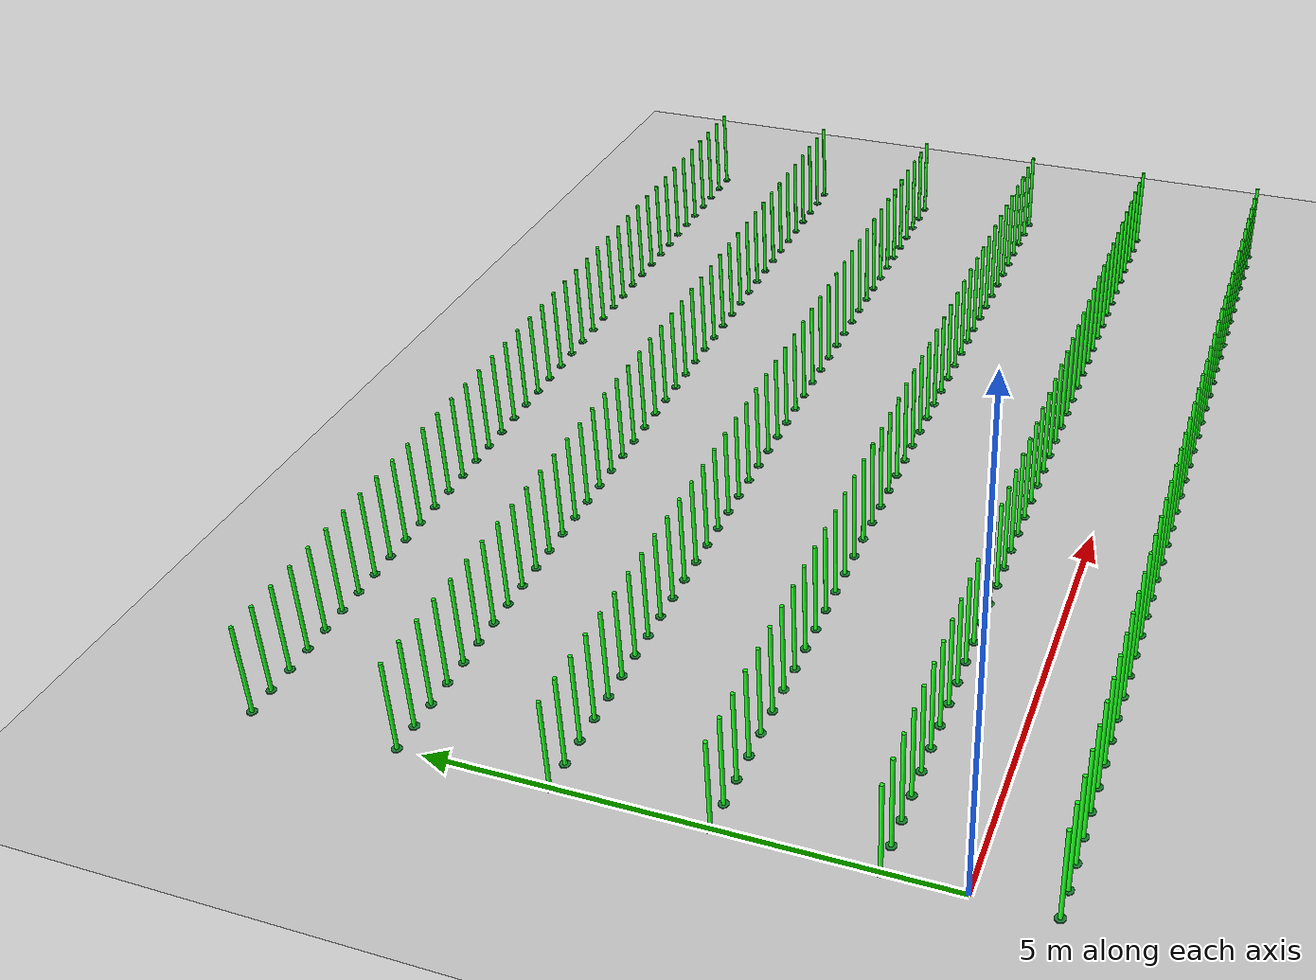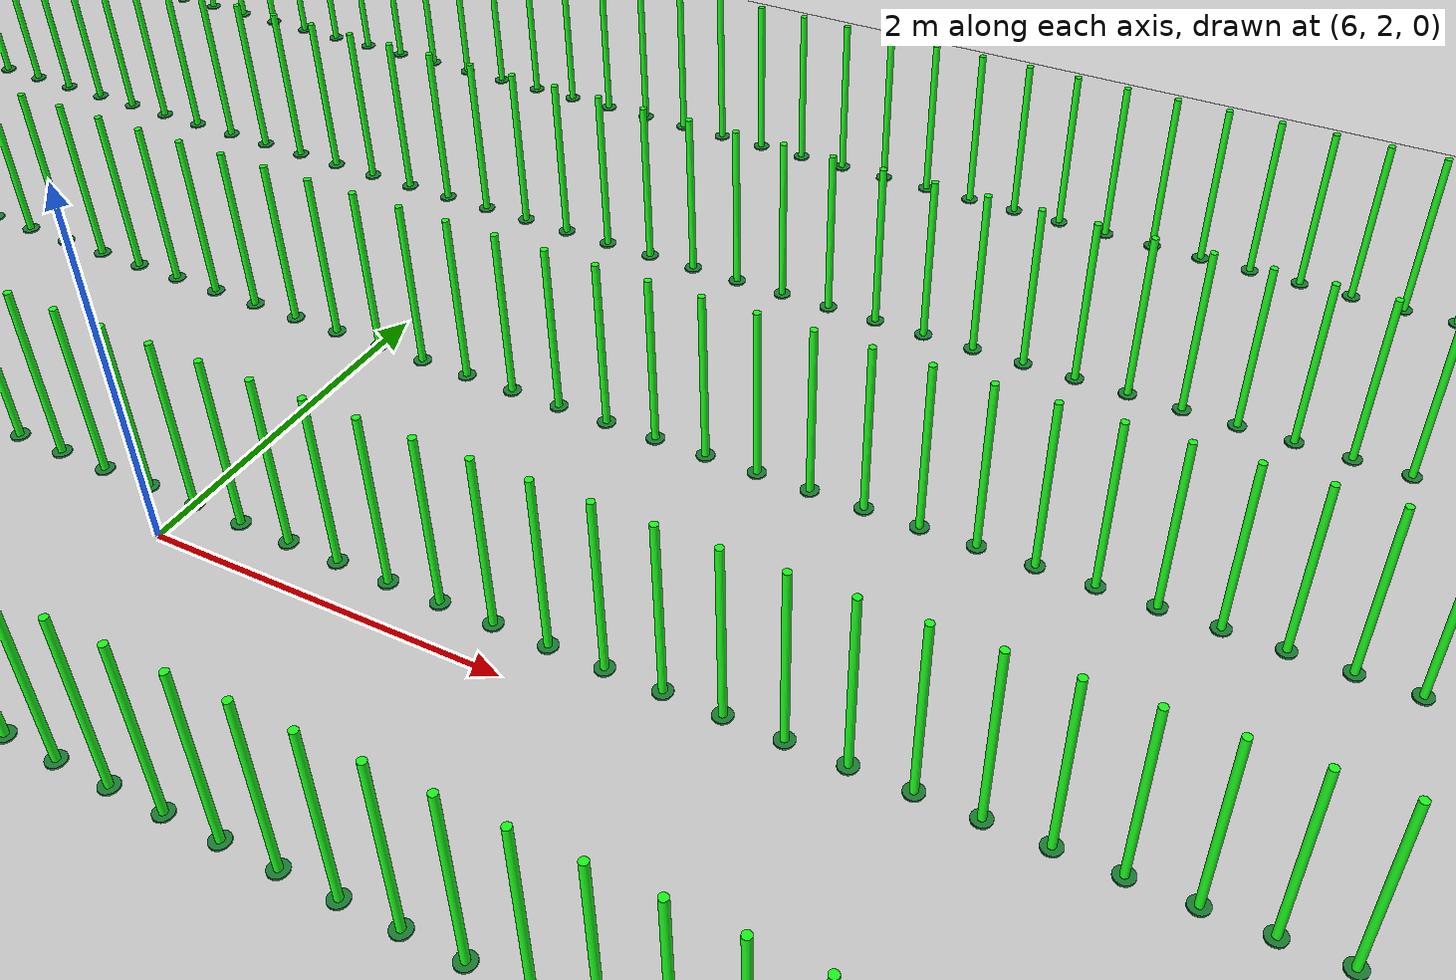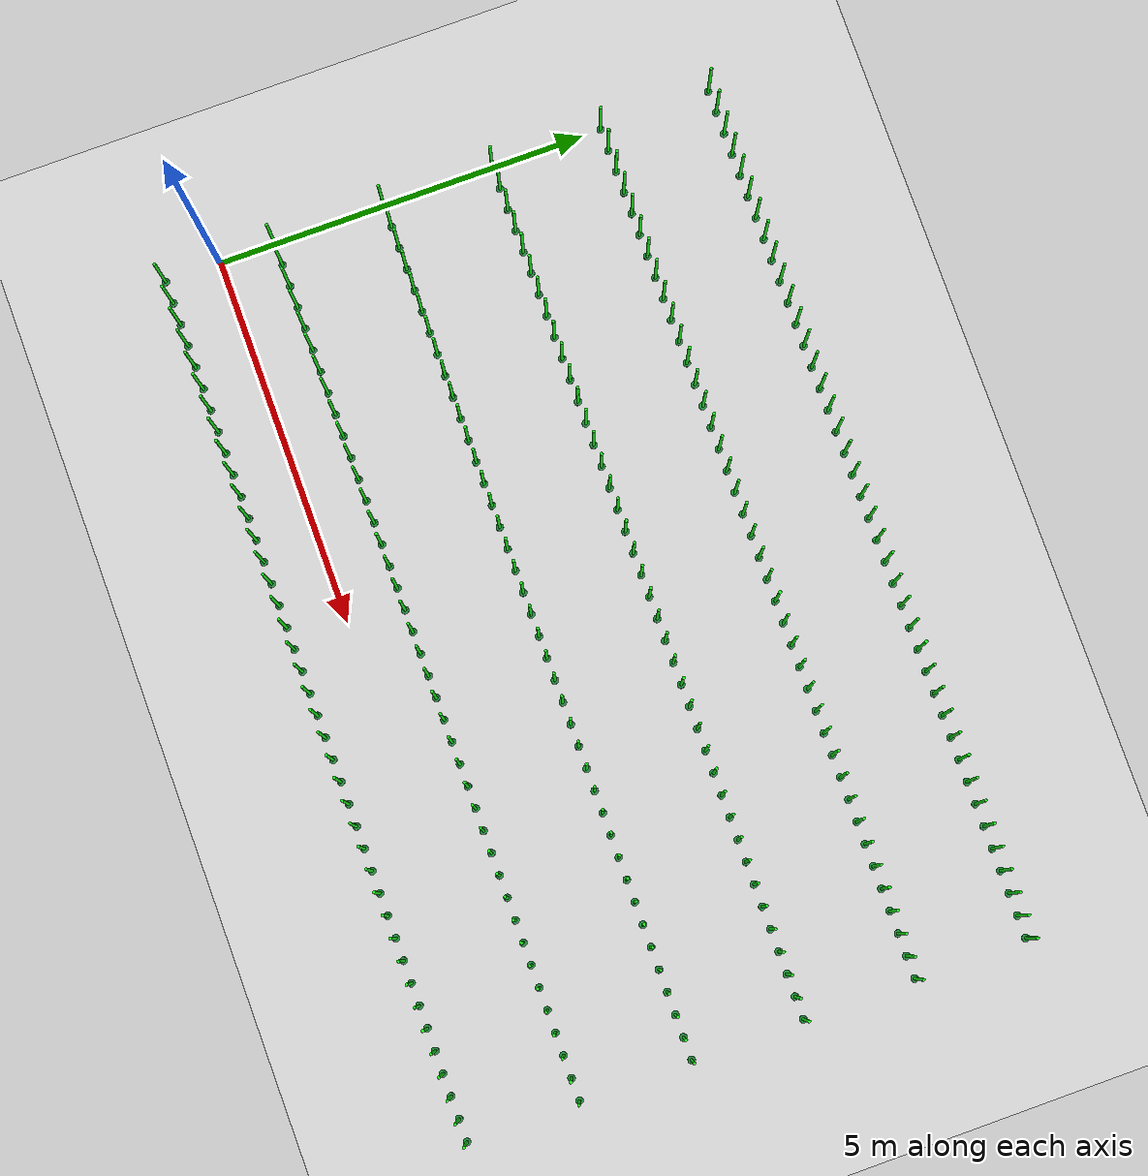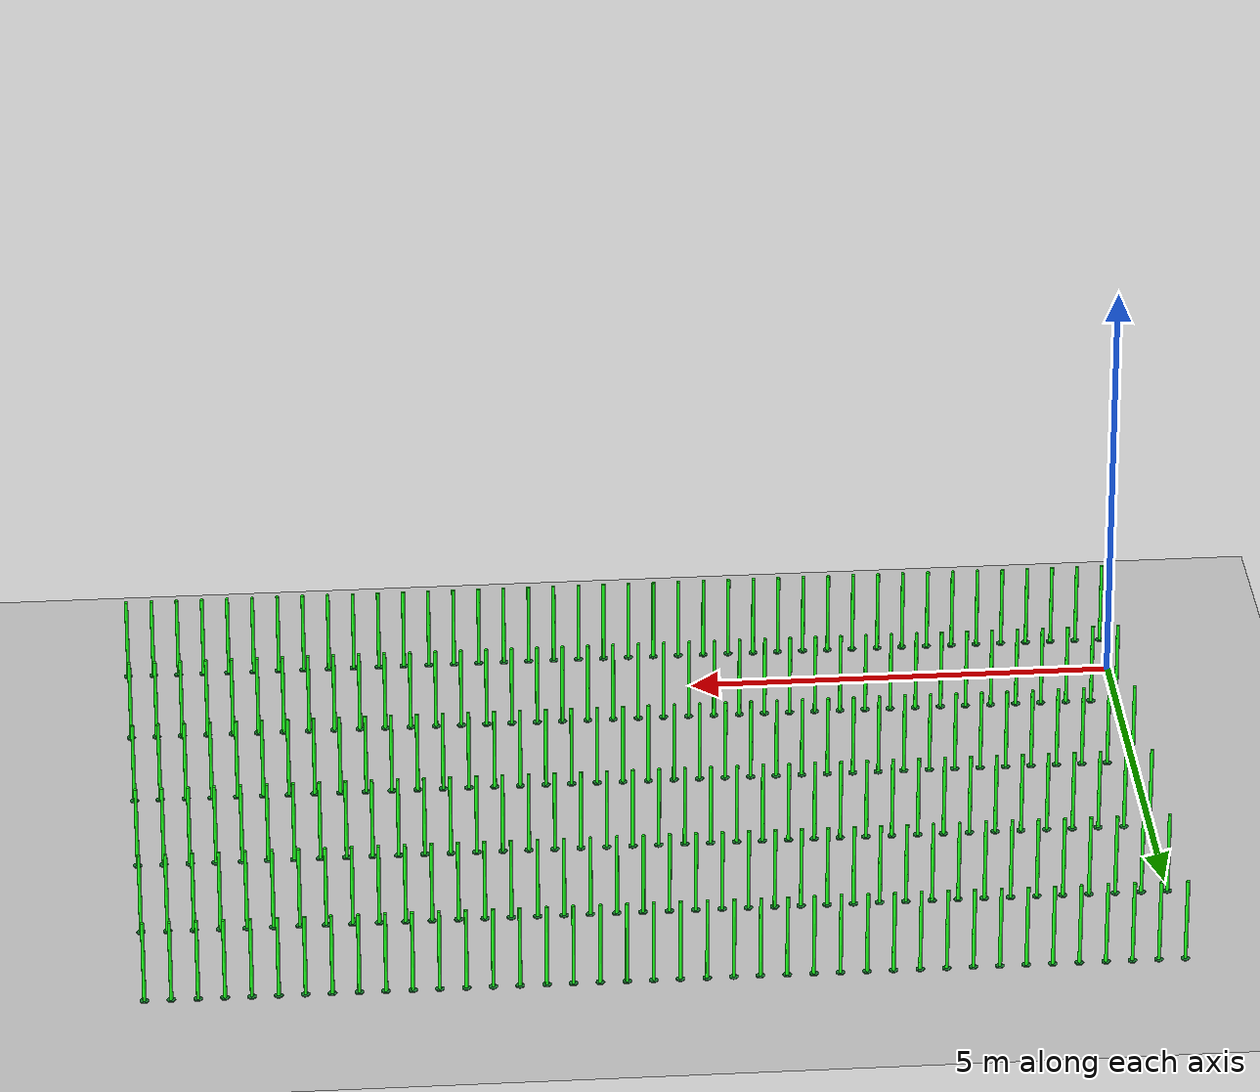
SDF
<?xml version="1.0" ?>
<sdf version="1.4">
  <world name="default">
    <include>
      <uri>model://ground_plane</uri>
    </include>
    <include>
      <uri>model://sun</uri>
    </include>
      <model name="plantgreen_0_0">
        <include>
          <uri>model://plantgreen</uri>
        </include>
        <pose>0.0 -0.75 0 0 0 0</pose>
      </model>
      <model name="plantgreen_0_1">
        <include>
          <uri>model://plantgreen</uri>
        </include>
        <pose>0.3 -0.75 0 0 0 0</pose>
      </model>
      <model name="plantgreen_0_2">
        <include>
          <uri>model://plantgreen</uri>
        </include>
        <pose>0.6 -0.75 0 0 0 0</pose>
      </model>
      <model name="plantgreen_0_3">
        <include>
          <uri>model://plantgreen</uri>
        </include>
        <pose>0.9 -0.75 0 0 0 0</pose>
      </model>
      <model name="plantgreen_0_4">
        <include>
          <uri>model://plantgreen</uri>
        </include>
        <pose>1.2 -0.75 0 0 0 0</pose>
      </model>
      <model name="plantgreen_0_5">
        <include>
          <uri>model://plantgreen</uri>
        </include>
        <pose>1.5 -0.75 0 0 0 0</pose>
      </model>
      <model name="plantgreen_0_6">
        <include>
          <uri>model://plantgreen</uri>
        </include>
        <pose>1.8 -0.75 0 0 0 0</pose>
      </model>
      <model name="plantgreen_0_7">
        <include>
          <uri>model://plantgreen</uri>
        </include>
        <pose>2.1 -0.75 0 0 0 0</pose>
      </model>
      <model name="plantgreen_0_8">
        <include>
          <uri>model://plantgreen</uri>
        </include>
        <pose>2.4 -0.75 0 0 0 0</pose>
      </model>
      <model name="plantgreen_0_9">
        <include>
          <uri>model://plantgreen</uri>
        </include>
        <pose>2.7 -0.75 0 0 0 0</pose>
      </model>
      <model name="plantgreen_0_10">
        <include>
          <uri>model://plantgreen</uri>
        </include>
        <pose>3.0 -0.75 0 0 0 0</pose>
      </model>
      <model name="plantgreen_0_11">
        <include>
          <uri>model://plantgreen</uri>
        </include>
        <pose>3.3 -0.75 0 0 0 0</pose>
      </model>
      <model name="plantgreen_0_12">
        <include>
          <uri>model://plantgreen</uri>
        </include>
        <pose>3.6 -0.75 0 0 0 0</pose>
      </model>
      <model name="plantgreen_0_13">
        <include>
          <uri>model://plantgreen</uri>
        </include>
        <pose>3.9 -0.75 0 0 0 0</pose>
      </model>
      <model name="plantgreen_0_14">
        <include>
          <uri>model://plantgreen</uri>
        </include>
        <pose>4.2 -0.75 0 0 0 0</pose>
      </model>
      <model name="plantgreen_0_15">
        <include>
          <uri>model://plantgreen</uri>
        </include>
        <pose>4.5 -0.75 0 0 0 0</pose>
      </model>
      <model name="plantgreen_0_16">
        <include>
          <uri>model://plantgreen</uri>
        </include>
        <pose>4.8 -0.75 0 0 0 0</pose>
      </model>
      <model name="plantgreen_0_17">
        <include>
          <uri>model://plantgreen</uri>
        </include>
        <pose>5.1 -0.75 0 0 0 0</pose>
      </model>
      <model name="plantgreen_0_18">
        <include>
          <uri>model://plantgreen</uri>
        </include>
        <pose>5.4 -0.75 0 0 0 0</pose>
      </model>
      <model name="plantgreen_0_19">
        <include>
          <uri>model://plantgreen</uri>
        </include>
        <pose>5.7 -0.75 0 0 0 0</pose>
      </model>
      <model name="plantgreen_0_20">
        <include>
          <uri>model://plantgreen</uri>
        </include>
        <pose>6.0 -0.75 0 0 0 0</pose>
      </model>
      <model name="plantgreen_0_21">
        <include>
          <uri>model://plantgreen</uri>
        </include>
        <pose>6.3 -0.75 0 0 0 0</pose>
      </model>
      <model name="plantgreen_0_22">
        <include>
          <uri>model://plantgreen</uri>
        </include>
        <pose>6.6 -0.75 0 0 0 0</pose>
      </model>
      <model name="plantgreen_0_23">
        <include>
          <uri>model://plantgreen</uri>
        </include>
        <pose>6.9 -0.75 0 0 0 0</pose>
      </model>
      <model name="plantgreen_0_24">
        <include>
          <uri>model://plantgreen</uri>
        </include>
        <pose>7.2 -0.75 0 0 0 0</pose>
      </model>
      <model name="plantgreen_0_25">
        <include>
          <uri>model://plantgreen</uri>
        </include>
        <pose>7.5 -0.75 0 0 0 0</pose>
      </model>
      <model name="plantgreen_0_26">
        <include>
          <uri>model://plantgreen</uri>
        </include>
        <pose>7.8 -0.75 0 0 0 0</pose>
      </model>
      <model name="plantgreen_0_27">
        <include>
          <uri>model://plantgreen</uri>
        </include>
        <pose>8.1 -0.75 0 0 0 0</pose>
      </model>
      <model name="plantgreen_0_28">
        <include>
          <uri>model://plantgreen</uri>
        </include>
        <pose>8.4 -0.75 0 0 0 0</pose>
      </model>
      <model name="plantgreen_0_29">
        <include>
          <uri>model://plantgreen</uri>
        </include>
        <pose>8.7 -0.75 0 0 0 0</pose>
      </model>
      <model name="plantgreen_0_30">
        <include>
          <uri>model://plantgreen</uri>
        </include>
        <pose>9.0 -0.75 0 0 0 0</pose>
      </model>
      <model name="plantgreen_0_31">
        <include>
          <uri>model://plantgreen</uri>
        </include>
        <pose>9.3 -0.75 0 0 0 0</pose>
      </model>
      <model name="plantgreen_0_32">
        <include>
          <uri>model://plantgreen</uri>
        </include>
        <pose>9.6 -0.75 0 0 0 0</pose>
      </model>
      <model name="plantgreen_0_33">
        <include>
          <uri>model://plantgreen</uri>
        </include>
        <pose>9.9 -0.75 0 0 0 0</pose>
      </model>
      <model name="plantgreen_0_34">
        <include>
          <uri>model://plantgreen</uri>
        </include>
        <pose>10.2 -0.75 0 0 0 0</pose>
      </model>
      <model name="plantgreen_0_35">
        <include>
          <uri>model://plantgreen</uri>
        </include>
        <pose>10.5 -0.75 0 0 0 0</pose>
      </model>
      <model name="plantgreen_0_36">
        <include>
          <uri>model://plantgreen</uri>
        </include>
        <pose>10.8 -0.75 0 0 0 0</pose>
      </model>
      <model name="plantgreen_0_37">
        <include>
          <uri>model://plantgreen</uri>
        </include>
        <pose>11.1 -0.75 0 0 0 0</pose>
      </model>
      <model name="plantgreen_0_38">
        <include>
          <uri>model://plantgreen</uri>
        </include>
        <pose>11.4 -0.75 0 0 0 0</pose>
      </model>
      <model name="plantgreen_0_39">
        <include>
          <uri>model://plantgreen</uri>
        </include>
        <pose>11.7 -0.75 0 0 0 0</pose>
      </model>
      <model name="plantgreen_1_0">
        <include>
          <uri>model://plantgreen</uri>
        </include>
        <pose>0.0 0.75 0 0 0 0</pose>
      </model>
      <model name="plantgreen_1_1">
        <include>
          <uri>model://plantgreen</uri>
        </include>
        <pose>0.3 0.75 0 0 0 0</pose>
      </model>
      <model name="plantgreen_1_2">
        <include>
          <uri>model://plantgreen</uri>
        </include>
        <pose>0.6 0.75 0 0 0 0</pose>
      </model>
      <model name="plantgreen_1_3">
        <include>
          <uri>model://plantgreen</uri>
        </include>
        <pose>0.9 0.75 0 0 0 0</pose>
      </model>
      <model name="plantgreen_1_4">
        <include>
          <uri>model://plantgreen</uri>
        </include>
        <pose>1.2 0.75 0 0 0 0</pose>
      </model>
      <model name="plantgreen_1_5">
        <include>
          <uri>model://plantgreen</uri>
        </include>
        <pose>1.5 0.75 0 0 0 0</pose>
      </model>
      <model name="plantgreen_1_6">
        <include>
          <uri>model://plantgreen</uri>
        </include>
        <pose>1.8 0.75 0 0 0 0</pose>
      </model>
      <model name="plantgreen_1_7">
        <include>
          <uri>model://plantgreen</uri>
        </include>
        <pose>2.1 0.75 0 0 0 0</pose>
      </model>
      <model name="plantgreen_1_8">
        <include>
          <uri>model://plantgreen</uri>
        </include>
        <pose>2.4 0.75 0 0 0 0</pose>
      </model>
      <model name="plantgreen_1_9">
        <include>
          <uri>model://plantgreen</uri>
        </include>
        <pose>2.7 0.75 0 0 0 0</pose>
      </model>
      <model name="plantgreen_1_10">
        <include>
          <uri>model://plantgreen</uri>
        </include>
        <pose>3.0 0.75 0 0 0 0</pose>
      </model>
      <model name="plantgreen_1_11">
        <include>
          <uri>model://plantgreen</uri>
        </include>
        <pose>3.3 0.75 0 0 0 0</pose>
      </model>
      <model name="plantgreen_1_12">
        <include>
          <uri>model://plantgreen</uri>
        </include>
        <pose>3.6 0.75 0 0 0 0</pose>
      </model>
      <model name="plantgreen_1_13">
        <include>
          <uri>model://plantgreen</uri>
        </include>
        <pose>3.9 0.75 0 0 0 0</pose>
      </model>
      <model name="plantgreen_1_14">
        <include>
          <uri>model://plantgreen</uri>
        </include>
        <pose>4.2 0.75 0 0 0 0</pose>
      </model>
      <model name="plantgreen_1_15">
        <include>
          <uri>model://plantgreen</uri>
        </include>
        <pose>4.5 0.75 0 0 0 0</pose>
      </model>
      <model name="plantgreen_1_16">
        <include>
          <uri>model://plantgreen</uri>
        </include>
        <pose>4.8 0.75 0 0 0 0</pose>
      </model>
      <model name="plantgreen_1_17">
        <include>
          <uri>model://plantgreen</uri>
        </include>
        <pose>5.1 0.75 0 0 0 0</pose>
      </model>
      <model name="plantgreen_1_18">
        <include>
          <uri>model://plantgreen</uri>
        </include>
        <pose>5.4 0.75 0 0 0 0</pose>
      </model>
      <model name="plantgreen_1_19">
        <include>
          <uri>model://plantgreen</uri>
        </include>
        <pose>5.7 0.75 0 0 0 0</pose>
      </model>
      <model name="plantgreen_1_20">
        <include>
          <uri>model://plantgreen</uri>
        </include>
        <pose>6.0 0.75 0 0 0 0</pose>
      </model>
      <model name="plantgreen_1_21">
        <include>
          <uri>model://plantgreen</uri>
        </include>
        <pose>6.3 0.75 0 0 0 0</pose>
      </model>
      <model name="plantgreen_1_22">
        <include>
          <uri>model://plantgreen</uri>
        </include>
        <pose>6.6 0.75 0 0 0 0</pose>
      </model>
      <model name="plantgreen_1_23">
        <include>
          <uri>model://plantgreen</uri>
        </include>
        <pose>6.9 0.75 0 0 0 0</pose>
      </model>
      <model name="plantgreen_1_24">
        <include>
          <uri>model://plantgreen</uri>
        </include>
        <pose>7.2 0.75 0 0 0 0</pose>
      </model>
      <model name="plantgreen_1_25">
        <include>
          <uri>model://plantgreen</uri>
        </include>
        <pose>7.5 0.75 0 0 0 0</pose>
      </model>
      <model name="plantgreen_1_26">
        <include>
          <uri>model://plantgreen</uri>
        </include>
        <pose>7.8 0.75 0 0 0 0</pose>
      </model>
      <model name="plantgreen_1_27">
        <include>
          <uri>model://plantgreen</uri>
        </include>
        <pose>8.1 0.75 0 0 0 0</pose>
      </model>
      <model name="plantgreen_1_28">
        <include>
          <uri>model://plantgreen</uri>
        </include>
        <pose>8.4 0.75 0 0 0 0</pose>
      </model>
      <model name="plantgreen_1_29">
        <include>
          <uri>model://plantgreen</uri>
        </include>
        <pose>8.7 0.75 0 0 0 0</pose>
      </model>
      <model name="plantgreen_1_30">
        <include>
          <uri>model://plantgreen</uri>
        </include>
        <pose>9.0 0.75 0 0 0 0</pose>
      </model>
      <model name="plantgreen_1_31">
        <include>
          <uri>model://plantgreen</uri>
        </include>
        <pose>9.3 0.75 0 0 0 0</pose>
      </model>
      <model name="plantgreen_1_32">
        <include>
          <uri>model://plantgreen</uri>
        </include>
        <pose>9.6 0.75 0 0 0 0</pose>
      </model>
      <model name="plantgreen_1_33">
        <include>
          <uri>model://plantgreen</uri>
        </include>
        <pose>9.9 0.75 0 0 0 0</pose>
      </model>
      <model name="plantgreen_1_34">
        <include>
          <uri>model://plantgreen</uri>
        </include>
        <pose>10.2 0.75 0 0 0 0</pose>
      </model>
      <model name="plantgreen_1_35">
        <include>
          <uri>model://plantgreen</uri>
        </include>
        <pose>10.5 0.75 0 0 0 0</pose>
      </model>
      <model name="plantgreen_1_36">
        <include>
          <uri>model://plantgreen</uri>
        </include>
        <pose>10.8 0.75 0 0 0 0</pose>
      </model>
      <model name="plantgreen_1_37">
        <include>
          <uri>model://plantgreen</uri>
        </include>
        <pose>11.1 0.75 0 0 0 0</pose>
      </model>
      <model name="plantgreen_1_38">
        <include>
          <uri>model://plantgreen</uri>
        </include>
        <pose>11.4 0.75 0 0 0 0</pose>
      </model>
      <model name="plantgreen_1_39">
        <include>
          <uri>model://plantgreen</uri>
        </include>
        <pose>11.7 0.75 0 0 0 0</pose>
      </model>
      <model name="plantgreen_2_0">
        <include>
          <uri>model://plantgreen</uri>
        </include>
        <pose>0.0 2.25 0 0 0 0</pose>
      </model>
      <model name="plantgreen_2_1">
        <include>
          <uri>model://plantgreen</uri>
        </include>
        <pose>0.3 2.25 0 0 0 0</pose>
      </model>
      <model name="plantgreen_2_2">
        <include>
          <uri>model://plantgreen</uri>
        </include>
        <pose>0.6 2.25 0 0 0 0</pose>
      </model>
      <model name="plantgreen_2_3">
        <include>
          <uri>model://plantgreen</uri>
        </include>
        <pose>0.9 2.25 0 0 0 0</pose>
      </model>
      <model name="plantgreen_2_4">
        <include>
          <uri>model://plantgreen</uri>
        </include>
        <pose>1.2 2.25 0 0 0 0</pose>
      </model>
      <model name="plantgreen_2_5">
        <include>
          <uri>model://plantgreen</uri>
        </include>
        <pose>1.5 2.25 0 0 0 0</pose>
      </model>
      <model name="plantgreen_2_6">
        <include>
          <uri>model://plantgreen</uri>
        </include>
        <pose>1.8 2.25 0 0 0 0</pose>
      </model>
      <model name="plantgreen_2_7">
        <include>
          <uri>model://plantgreen</uri>
        </include>
        <pose>2.1 2.25 0 0 0 0</pose>
      </model>
      <model name="plantgreen_2_8">
        <include>
          <uri>model://plantgreen</uri>
        </include>
        <pose>2.4 2.25 0 0 0 0</pose>
      </model>
      <model name="plantgreen_2_9">
        <include>
          <uri>model://plantgreen</uri>
        </include>
        <pose>2.7 2.25 0 0 0 0</pose>
      </model>
      <model name="plantgreen_2_10">
        <include>
          <uri>model://plantgreen</uri>
        </include>
        <pose>3.0 2.25 0 0 0 0</pose>
      </model>
      <model name="plantgreen_2_11">
        <include>
          <uri>model://plantgreen</uri>
        </include>
        <pose>3.3 2.25 0 0 0 0</pose>
      </model>
      <model name="plantgreen_2_12">
        <include>
          <uri>model://plantgreen</uri>
        </include>
        <pose>3.6 2.25 0 0 0 0</pose>
      </model>
      <model name="plantgreen_2_13">
        <include>
          <uri>model://plantgreen</uri>
        </include>
        <pose>3.9 2.25 0 0 0 0</pose>
      </model>
      <model name="plantgreen_2_14">
        <include>
          <uri>model://plantgreen</uri>
        </include>
        <pose>4.2 2.25 0 0 0 0</pose>
      </model>
      <model name="plantgreen_2_15">
        <include>
          <uri>model://plantgreen</uri>
        </include>
        <pose>4.5 2.25 0 0 0 0</pose>
      </model>
      <model name="plantgreen_2_16">
        <include>
          <uri>model://plantgreen</uri>
        </include>
        <pose>4.8 2.25 0 0 0 0</pose>
      </model>
      <model name="plantgreen_2_17">
        <include>
          <uri>model://plantgreen</uri>
        </include>
        <pose>5.1 2.25 0 0 0 0</pose>
      </model>
      <model name="plantgreen_2_18">
        <include>
          <uri>model://plantgreen</uri>
        </include>
        <pose>5.4 2.25 0 0 0 0</pose>
      </model>
      <model name="plantgreen_2_19">
        <include>
          <uri>model://plantgreen</uri>
        </include>
        <pose>5.7 2.25 0 0 0 0</pose>
      </model>
      <model name="plantgreen_2_20">
        <include>
          <uri>model://plantgreen</uri>
        </include>
        <pose>6.0 2.25 0 0 0 0</pose>
      </model>
      <model name="plantgreen_2_21">
        <include>
          <uri>model://plantgreen</uri>
        </include>
        <pose>6.3 2.25 0 0 0 0</pose>
      </model>
      <model name="plantgreen_2_22">
        <include>
          <uri>model://plantgreen</uri>
        </include>
        <pose>6.6 2.25 0 0 0 0</pose>
      </model>
      <model name="plantgreen_2_23">
        <include>
          <uri>model://plantgreen</uri>
        </include>
        <pose>6.9 2.25 0 0 0 0</pose>
      </model>
      <model name="plantgreen_2_24">
        <include>
          <uri>model://plantgreen</uri>
        </include>
        <pose>7.2 2.25 0 0 0 0</pose>
      </model>
      <model name="plantgreen_2_25">
        <include>
          <uri>model://plantgreen</uri>
        </include>
        <pose>7.5 2.25 0 0 0 0</pose>
      </model>
      <model name="plantgreen_2_26">
        <include>
          <uri>model://plantgreen</uri>
        </include>
        <pose>7.8 2.25 0 0 0 0</pose>
      </model>
      <model name="plantgreen_2_27">
        <include>
          <uri>model://plantgreen</uri>
        </include>
        <pose>8.1 2.25 0 0 0 0</pose>
      </model>
      <model name="plantgreen_2_28">
        <include>
          <uri>model://plantgreen</uri>
        </include>
        <pose>8.4 2.25 0 0 0 0</pose>
      </model>
      <model name="plantgreen_2_29">
        <include>
          <uri>model://plantgreen</uri>
        </include>
        <pose>8.7 2.25 0 0 0 0</pose>
      </model>
      <model name="plantgreen_2_30">
        <include>
          <uri>model://plantgreen</uri>
        </include>
        <pose>9.0 2.25 0 0 0 0</pose>
      </model>
      <model name="plantgreen_2_31">
        <include>
          <uri>model://plantgreen</uri>
        </include>
        <pose>9.3 2.25 0 0 0 0</pose>
      </model>
      <model name="plantgreen_2_32">
        <include>
          <uri>model://plantgreen</uri>
        </include>
        <pose>9.6 2.25 0 0 0 0</pose>
      </model>
      <model name="plantgreen_2_33">
        <include>
          <uri>model://plantgreen</uri>
        </include>
        <pose>9.9 2.25 0 0 0 0</pose>
      </model>
      <model name="plantgreen_2_34">
        <include>
          <uri>model://plantgreen</uri>
        </include>
        <pose>10.2 2.25 0 0 0 0</pose>
      </model>
      <model name="plantgreen_2_35">
        <include>
          <uri>model://plantgreen</uri>
        </include>
        <pose>10.5 2.25 0 0 0 0</pose>
      </model>
      <model name="plantgreen_2_36">
        <include>
          <uri>model://plantgreen</uri>
        </include>
        <pose>10.8 2.25 0 0 0 0</pose>
      </model>
      <model name="plantgreen_2_37">
        <include>
          <uri>model://plantgreen</uri>
        </include>
        <pose>11.1 2.25 0 0 0 0</pose>
      </model>
      <model name="plantgreen_2_38">
        <include>
          <uri>model://plantgreen</uri>
        </include>
        <pose>11.4 2.25 0 0 0 0</pose>
      </model>
      <model name="plantgreen_2_39">
        <include>
          <uri>model://plantgreen</uri>
        </include>
        <pose>11.7 2.25 0 0 0 0</pose>
      </model>
      <model name="plantgreen_3_0">
        <include>
          <uri>model://plantgreen</uri>
        </include>
        <pose>0.0 3.75 0 0 0 0</pose>
      </model>
      <model name="plantgreen_3_1">
        <include>
          <uri>model://plantgreen</uri>
        </include>
        <pose>0.3 3.75 0 0 0 0</pose>
      </model>
      <model name="plantgreen_3_2">
        <include>
          <uri>model://plantgreen</uri>
        </include>
        <pose>0.6 3.75 0 0 0 0</pose>
      </model>
      <model name="plantgreen_3_3">
        <include>
          <uri>model://plantgreen</uri>
        </include>
        <pose>0.9 3.75 0 0 0 0</pose>
      </model>
      <model name="plantgreen_3_4">
        <include>
          <uri>model://plantgreen</uri>
        </include>
        <pose>1.2 3.75 0 0 0 0</pose>
      </model>
      <model name="plantgreen_3_5">
        <include>
          <uri>model://plantgreen</uri>
        </include>
        <pose>1.5 3.75 0 0 0 0</pose>
      </model>
      <model name="plantgreen_3_6">
        <include>
          <uri>model://plantgreen</uri>
        </include>
        <pose>1.8 3.75 0 0 0 0</pose>
      </model>
      <model name="plantgreen_3_7">
        <include>
          <uri>model://plantgreen</uri>
        </include>
        <pose>2.1 3.75 0 0 0 0</pose>
      </model>
      <model name="plantgreen_3_8">
        <include>
          <uri>model://plantgreen</uri>
        </include>
        <pose>2.4 3.75 0 0 0 0</pose>
      </model>
      <model name="plantgreen_3_9">
        <include>
          <uri>model://plantgreen</uri>
        </include>
        <pose>2.7 3.75 0 0 0 0</pose>
      </model>
      <model name="plantgreen_3_10">
        <include>
          <uri>model://plantgreen</uri>
        </include>
        <pose>3.0 3.75 0 0 0 0</pose>
      </model>
      <model name="plantgreen_3_11">
        <include>
          <uri>model://plantgreen</uri>
        </include>
        <pose>3.3 3.75 0 0 0 0</pose>
      </model>
      <model name="plantgreen_3_12">
        <include>
          <uri>model://plantgreen</uri>
        </include>
        <pose>3.6 3.75 0 0 0 0</pose>
      </model>
      <model name="plantgreen_3_13">
        <include>
          <uri>model://plantgreen</uri>
        </include>
        <pose>3.9 3.75 0 0 0 0</pose>
      </model>
      <model name="plantgreen_3_14">
        <include>
          <uri>model://plantgreen</uri>
        </include>
        <pose>4.2 3.75 0 0 0 0</pose>
      </model>
      <model name="plantgreen_3_15">
        <include>
          <uri>model://plantgreen</uri>
        </include>
        <pose>4.5 3.75 0 0 0 0</pose>
      </model>
      <model name="plantgreen_3_16">
        <include>
          <uri>model://plantgreen</uri>
        </include>
        <pose>4.8 3.75 0 0 0 0</pose>
      </model>
      <model name="plantgreen_3_17">
        <include>
          <uri>model://plantgreen</uri>
        </include>
        <pose>5.1 3.75 0 0 0 0</pose>
      </model>
      <model name="plantgreen_3_18">
        <include>
          <uri>model://plantgreen</uri>
        </include>
        <pose>5.4 3.75 0 0 0 0</pose>
      </model>
      <model name="plantgreen_3_19">
        <include>
          <uri>model://plantgreen</uri>
        </include>
        <pose>5.7 3.75 0 0 0 0</pose>
      </model>
      <model name="plantgreen_3_20">
        <include>
          <uri>model://plantgreen</uri>
        </include>
        <pose>6.0 3.75 0 0 0 0</pose>
      </model>
      <model name="plantgreen_3_21">
        <include>
          <uri>model://plantgreen</uri>
        </include>
        <pose>6.3 3.75 0 0 0 0</pose>
      </model>
      <model name="plantgreen_3_22">
        <include>
          <uri>model://plantgreen</uri>
        </include>
        <pose>6.6 3.75 0 0 0 0</pose>
      </model>
      <model name="plantgreen_3_23">
        <include>
          <uri>model://plantgreen</uri>
        </include>
        <pose>6.9 3.75 0 0 0 0</pose>
      </model>
      <model name="plantgreen_3_24">
        <include>
          <uri>model://plantgreen</uri>
        </include>
        <pose>7.2 3.75 0 0 0 0</pose>
      </model>
      <model name="plantgreen_3_25">
        <include>
          <uri>model://plantgreen</uri>
        </include>
        <pose>7.5 3.75 0 0 0 0</pose>
      </model>
      <model name="plantgreen_3_26">
        <include>
          <uri>model://plantgreen</uri>
        </include>
        <pose>7.8 3.75 0 0 0 0</pose>
      </model>
      <model name="plantgreen_3_27">
        <include>
          <uri>model://plantgreen</uri>
        </include>
        <pose>8.1 3.75 0 0 0 0</pose>
      </model>
      <model name="plantgreen_3_28">
        <include>
          <uri>model://plantgreen</uri>
        </include>
        <pose>8.4 3.75 0 0 0 0</pose>
      </model>
      <model name="plantgreen_3_29">
        <include>
          <uri>model://plantgreen</uri>
        </include>
        <pose>8.7 3.75 0 0 0 0</pose>
      </model>
      <model name="plantgreen_3_30">
        <include>
          <uri>model://plantgreen</uri>
        </include>
        <pose>9.0 3.75 0 0 0 0</pose>
      </model>
      <model name="plantgreen_3_31">
        <include>
          <uri>model://plantgreen</uri>
        </include>
        <pose>9.3 3.75 0 0 0 0</pose>
      </model>
      <model name="plantgreen_3_32">
        <include>
          <uri>model://plantgreen</uri>
        </include>
        <pose>9.6 3.75 0 0 0 0</pose>
      </model>
      <model name="plantgreen_3_33">
        <include>
          <uri>model://plantgreen</uri>
        </include>
        <pose>9.9 3.75 0 0 0 0</pose>
      </model>
      <model name="plantgreen_3_34">
        <include>
          <uri>model://plantgreen</uri>
        </include>
        <pose>10.2 3.75 0 0 0 0</pose>
      </model>
      <model name="plantgreen_3_35">
        <include>
          <uri>model://plantgreen</uri>
        </include>
        <pose>10.5 3.75 0 0 0 0</pose>
      </model>
      <model name="plantgreen_3_36">
        <include>
          <uri>model://plantgreen</uri>
        </include>
        <pose>10.8 3.75 0 0 0 0</pose>
      </model>
      <model name="plantgreen_3_37">
        <include>
          <uri>model://plantgreen</uri>
        </include>
        <pose>11.1 3.75 0 0 0 0</pose>
      </model>
      <model name="plantgreen_3_38">
        <include>
          <uri>model://plantgreen</uri>
        </include>
        <pose>11.4 3.75 0 0 0 0</pose>
      </model>
      <model name="plantgreen_3_39">
        <include>
          <uri>model://plantgreen</uri>
        </include>
        <pose>11.7 3.75 0 0 0 0</pose>
      </model>
      <model name="plantgreen_4_0">
        <include>
          <uri>model://plantgreen</uri>
        </include>
        <pose>0.0 5.25 0 0 0 0</pose>
      </model>
      <model name="plantgreen_4_1">
        <include>
          <uri>model://plantgreen</uri>
        </include>
        <pose>0.3 5.25 0 0 0 0</pose>
      </model>
      <model name="plantgreen_4_2">
        <include>
          <uri>model://plantgreen</uri>
        </include>
        <pose>0.6 5.25 0 0 0 0</pose>
      </model>
      <model name="plantgreen_4_3">
        <include>
          <uri>model://plantgreen</uri>
        </include>
        <pose>0.9 5.25 0 0 0 0</pose>
      </model>
      <model name="plantgreen_4_4">
        <include>
          <uri>model://plantgreen</uri>
        </include>
        <pose>1.2 5.25 0 0 0 0</pose>
      </model>
      <model name="plantgreen_4_5">
        <include>
          <uri>model://plantgreen</uri>
        </include>
        <pose>1.5 5.25 0 0 0 0</pose>
      </model>
      <model name="plantgreen_4_6">
        <include>
          <uri>model://plantgreen</uri>
        </include>
        <pose>1.8 5.25 0 0 0 0</pose>
      </model>
      <model name="plantgreen_4_7">
        <include>
          <uri>model://plantgreen</uri>
        </include>
        <pose>2.1 5.25 0 0 0 0</pose>
      </model>
      <model name="plantgreen_4_8">
        <include>
          <uri>model://plantgreen</uri>
        </include>
        <pose>2.4 5.25 0 0 0 0</pose>
      </model>
      <model name="plantgreen_4_9">
        <include>
          <uri>model://plantgreen</uri>
        </include>
        <pose>2.7 5.25 0 0 0 0</pose>
      </model>
      <model name="plantgreen_4_10">
        <include>
          <uri>model://plantgreen</uri>
        </include>
        <pose>3.0 5.25 0 0 0 0</pose>
      </model>
      <model name="plantgreen_4_11">
        <include>
          <uri>model://plantgreen</uri>
        </include>
        <pose>3.3 5.25 0 0 0 0</pose>
      </model>
      <model name="plantgreen_4_12">
        <include>
          <uri>model://plantgreen</uri>
        </include>
        <pose>3.6 5.25 0 0 0 0</pose>
      </model>
      <model name="plantgreen_4_13">
        <include>
          <uri>model://plantgreen</uri>
        </include>
        <pose>3.9 5.25 0 0 0 0</pose>
      </model>
      <model name="plantgreen_4_14">
        <include>
          <uri>model://plantgreen</uri>
        </include>
        <pose>4.2 5.25 0 0 0 0</pose>
      </model>
      <model name="plantgreen_4_15">
        <include>
          <uri>model://plantgreen</uri>
        </include>
        <pose>4.5 5.25 0 0 0 0</pose>
      </model>
      <model name="plantgreen_4_16">
        <include>
          <uri>model://plantgreen</uri>
        </include>
        <pose>4.8 5.25 0 0 0 0</pose>
      </model>
      <model name="plantgreen_4_17">
        <include>
          <uri>model://plantgreen</uri>
        </include>
        <pose>5.1 5.25 0 0 0 0</pose>
      </model>
      <model name="plantgreen_4_18">
        <include>
          <uri>model://plantgreen</uri>
        </include>
        <pose>5.4 5.25 0 0 0 0</pose>
      </model>
      <model name="plantgreen_4_19">
        <include>
          <uri>model://plantgreen</uri>
        </include>
        <pose>5.7 5.25 0 0 0 0</pose>
      </model>
      <model name="plantgreen_4_20">
        <include>
          <uri>model://plantgreen</uri>
        </include>
        <pose>6.0 5.25 0 0 0 0</pose>
      </model>
      <model name="plantgreen_4_21">
        <include>
          <uri>model://plantgreen</uri>
        </include>
        <pose>6.3 5.25 0 0 0 0</pose>
      </model>
      <model name="plantgreen_4_22">
        <include>
          <uri>model://plantgreen</uri>
        </include>
        <pose>6.6 5.25 0 0 0 0</pose>
      </model>
      <model name="plantgreen_4_23">
        <include>
          <uri>model://plantgreen</uri>
        </include>
        <pose>6.9 5.25 0 0 0 0</pose>
      </model>
      <model name="plantgreen_4_24">
        <include>
          <uri>model://plantgreen</uri>
        </include>
        <pose>7.2 5.25 0 0 0 0</pose>
      </model>
      <model name="plantgreen_4_25">
        <include>
          <uri>model://plantgreen</uri>
        </include>
        <pose>7.5 5.25 0 0 0 0</pose>
      </model>
      <model name="plantgreen_4_26">
        <include>
          <uri>model://plantgreen</uri>
        </include>
        <pose>7.8 5.25 0 0 0 0</pose>
      </model>
      <model name="plantgreen_4_27">
        <include>
          <uri>model://plantgreen</uri>
        </include>
        <pose>8.1 5.25 0 0 0 0</pose>
      </model>
      <model name="plantgreen_4_28">
        <include>
          <uri>model://plantgreen</uri>
        </include>
        <pose>8.4 5.25 0 0 0 0</pose>
      </model>
      <model name="plantgreen_4_29">
        <include>
          <uri>model://plantgreen</uri>
        </include>
        <pose>8.7 5.25 0 0 0 0</pose>
      </model>
      <model name="plantgreen_4_30">
        <include>
          <uri>model://plantgreen</uri>
        </include>
        <pose>9.0 5.25 0 0 0 0</pose>
      </model>
      <model name="plantgreen_4_31">
        <include>
          <uri>model://plantgreen</uri>
        </include>
        <pose>9.3 5.25 0 0 0 0</pose>
      </model>
      <model name="plantgreen_4_32">
        <include>
          <uri>model://plantgreen</uri>
        </include>
        <pose>9.6 5.25 0 0 0 0</pose>
      </model>
      <model name="plantgreen_4_33">
        <include>
          <uri>model://plantgreen</uri>
        </include>
        <pose>9.9 5.25 0 0 0 0</pose>
      </model>
      <model name="plantgreen_4_34">
        <include>
          <uri>model://plantgreen</uri>
        </include>
        <pose>10.2 5.25 0 0 0 0</pose>
      </model>
      <model name="plantgreen_4_35">
        <include>
          <uri>model://plantgreen</uri>
        </include>
        <pose>10.5 5.25 0 0 0 0</pose>
      </model>
      <model name="plantgreen_4_36">
        <include>
          <uri>model://plantgreen</uri>
        </include>
        <pose>10.8 5.25 0 0 0 0</pose>
      </model>
      <model name="plantgreen_4_37">
        <include>
          <uri>model://plantgreen</uri>
        </include>
        <pose>11.1 5.25 0 0 0 0</pose>
      </model>
      <model name="plantgreen_4_38">
        <include>
          <uri>model://plantgreen</uri>
        </include>
        <pose>11.4 5.25 0 0 0 0</pose>
      </model>
      <model name="plantgreen_4_39">
        <include>
          <uri>model://plantgreen</uri>
        </include>
        <pose>11.7 5.25 0 0 0 0</pose>
      </model>
      <model name="plantgreen_5_0">
        <include>
          <uri>model://plantgreen</uri>
        </include>
        <pose>0.0 6.75 0 0 0 0</pose>
      </model>
      <model name="plantgreen_5_1">
        <include>
          <uri>model://plantgreen</uri>
        </include>
        <pose>0.3 6.75 0 0 0 0</pose>
      </model>
      <model name="plantgreen_5_2">
        <include>
          <uri>model://plantgreen</uri>
        </include>
        <pose>0.6 6.75 0 0 0 0</pose>
      </model>
      <model name="plantgreen_5_3">
        <include>
          <uri>model://plantgreen</uri>
        </include>
        <pose>0.9 6.75 0 0 0 0</pose>
      </model>
      <model name="plantgreen_5_4">
        <include>
          <uri>model://plantgreen</uri>
        </include>
        <pose>1.2 6.75 0 0 0 0</pose>
      </model>
      <model name="plantgreen_5_5">
        <include>
          <uri>model://plantgreen</uri>
        </include>
        <pose>1.5 6.75 0 0 0 0</pose>
      </model>
      <model name="plantgreen_5_6">
        <include>
          <uri>model://plantgreen</uri>
        </include>
        <pose>1.8 6.75 0 0 0 0</pose>
      </model>
      <model name="plantgreen_5_7">
        <include>
          <uri>model://plantgreen</uri>
        </include>
        <pose>2.1 6.75 0 0 0 0</pose>
      </model>
      <model name="plantgreen_5_8">
        <include>
          <uri>model://plantgreen</uri>
        </include>
        <pose>2.4 6.75 0 0 0 0</pose>
      </model>
      <model name="plantgreen_5_9">
        <include>
          <uri>model://plantgreen</uri>
        </include>
        <pose>2.7 6.75 0 0 0 0</pose>
      </model>
      <model name="plantgreen_5_10">
        <include>
          <uri>model://plantgreen</uri>
        </include>
        <pose>3.0 6.75 0 0 0 0</pose>
      </model>
      <model name="plantgreen_5_11">
        <include>
          <uri>model://plantgreen</uri>
        </include>
        <pose>3.3 6.75 0 0 0 0</pose>
      </model>
      <model name="plantgreen_5_12">
        <include>
          <uri>model://plantgreen</uri>
        </include>
        <pose>3.6 6.75 0 0 0 0</pose>
      </model>
      <model name="plantgreen_5_13">
        <include>
          <uri>model://plantgreen</uri>
        </include>
        <pose>3.9 6.75 0 0 0 0</pose>
      </model>
      <model name="plantgreen_5_14">
        <include>
          <uri>model://plantgreen</uri>
        </include>
        <pose>4.2 6.75 0 0 0 0</pose>
      </model>
      <model name="plantgreen_5_15">
        <include>
          <uri>model://plantgreen</uri>
        </include>
        <pose>4.5 6.75 0 0 0 0</pose>
      </model>
      <model name="plantgreen_5_16">
        <include>
          <uri>model://plantgreen</uri>
        </include>
        <pose>4.8 6.75 0 0 0 0</pose>
      </model>
      <model name="plantgreen_5_17">
        <include>
          <uri>model://plantgreen</uri>
        </include>
        <pose>5.1 6.75 0 0 0 0</pose>
      </model>
      <model name="plantgreen_5_18">
        <include>
          <uri>model://plantgreen</uri>
        </include>
        <pose>5.4 6.75 0 0 0 0</pose>
      </model>
      <model name="plantgreen_5_19">
        <include>
          <uri>model://plantgreen</uri>
        </include>
        <pose>5.7 6.75 0 0 0 0</pose>
      </model>
      <model name="plantgreen_5_20">
        <include>
          <uri>model://plantgreen</uri>
        </include>
        <pose>6.0 6.75 0 0 0 0</pose>
      </model>
      <model name="plantgreen_5_21">
        <include>
          <uri>model://plantgreen</uri>
        </include>
        <pose>6.3 6.75 0 0 0 0</pose>
      </model>
      <model name="plantgreen_5_22">
        <include>
          <uri>model://plantgreen</uri>
        </include>
        <pose>6.6 6.75 0 0 0 0</pose>
      </model>
      <model name="plantgreen_5_23">
        <include>
          <uri>model://plantgreen</uri>
        </include>
        <pose>6.9 6.75 0 0 0 0</pose>
      </model>
      <model name="plantgreen_5_24">
        <include>
          <uri>model://plantgreen</uri>
        </include>
        <pose>7.2 6.75 0 0 0 0</pose>
      </model>
      <model name="plantgreen_5_25">
        <include>
          <uri>model://plantgreen</uri>
        </include>
        <pose>7.5 6.75 0 0 0 0</pose>
      </model>
      <model name="plantgreen_5_26">
        <include>
          <uri>model://plantgreen</uri>
        </include>
        <pose>7.8 6.75 0 0 0 0</pose>
      </model>
      <model name="plantgreen_5_27">
        <include>
          <uri>model://plantgreen</uri>
        </include>
        <pose>8.1 6.75 0 0 0 0</pose>
      </model>
      <model name="plantgreen_5_28">
        <include>
          <uri>model://plantgreen</uri>
        </include>
        <pose>8.4 6.75 0 0 0 0</pose>
      </model>
      <model name="plantgreen_5_29">
        <include>
          <uri>model://plantgreen</uri>
        </include>
        <pose>8.7 6.75 0 0 0 0</pose>
      </model>
      <model name="plantgreen_5_30">
        <include>
          <uri>model://plantgreen</uri>
        </include>
        <pose>9.0 6.75 0 0 0 0</pose>
      </model>
      <model name="plantgreen_5_31">
        <include>
          <uri>model://plantgreen</uri>
        </include>
        <pose>9.3 6.75 0 0 0 0</pose>
      </model>
      <model name="plantgreen_5_32">
        <include>
          <uri>model://plantgreen</uri>
        </include>
        <pose>9.6 6.75 0 0 0 0</pose>
      </model>
      <model name="plantgreen_5_33">
        <include>
          <uri>model://plantgreen</uri>
        </include>
        <pose>9.9 6.75 0 0 0 0</pose>
      </model>
      <model name="plantgreen_5_34">
        <include>
          <uri>model://plantgreen</uri>
        </include>
        <pose>10.2 6.75 0 0 0 0</pose>
      </model>
      <model name="plantgreen_5_35">
        <include>
          <uri>model://plantgreen</uri>
        </include>
        <pose>10.5 6.75 0 0 0 0</pose>
      </model>
      <model name="plantgreen_5_36">
        <include>
          <uri>model://plantgreen</uri>
        </include>
        <pose>10.8 6.75 0 0 0 0</pose>
      </model>
      <model name="plantgreen_5_37">
        <include>
          <uri>model://plantgreen</uri>
        </include>
        <pose>11.1 6.75 0 0 0 0</pose>
      </model>
      <model name="plantgreen_5_38">
        <include>
          <uri>model://plantgreen</uri>
        </include>
        <pose>11.4 6.75 0 0 0 0</pose>
      </model>
      <model name="plantgreen_5_39">
        <include>
          <uri>model://plantgreen</uri>
        </include>
        <pose>11.7 6.75 0 0 0 0</pose>
      </model>
  </world>
</sdf>

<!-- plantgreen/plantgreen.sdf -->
<!-- |    This document was autogenerated by xacro from plantgreen/plantgreen.xacro    | -->
<!-- |    EDITING THIS FILE BY HAND IS NOT RECOMMENDED                                 | -->
<sdf version="1.5">
  <!-- Square dimensions (widthxwidth) of beams -->
  <model name="plantgreen">
    <static>true</static>
    <link name="body">
      <pose>0 0 0.005 0 0 0</pose>
      <inertial>
        <mass> 0.1 </mass>
        <inertia>
          <ixx>0.000250833333333</ixx>
          <ixy>0</ixy>
          <ixz>0</ixz>
          <iyy>0.000250833333333</iyy>
          <iyz>0</iyz>
          <izz>0.0005</izz>
        </inertia>
      </inertial>
      <collision name="collision">
        <geometry>
          <cylinder>
            <length>0.01</length>
            <radius>0.05</radius>
          </cylinder>
        </geometry>

        <surface>
          <contact>
            <collide_bitmask>0x00</collide_bitmask>
          </contact>
        </surface>

      </collision>
      <visual name="visual">
        <geometry>
          <cylinder>
            <length>0.01</length>
            <radius>0.05</radius>
          </cylinder>
        </geometry>
        <material>
          <ambient>0.1 0.5 0.1 1</ambient>
          <diffuse>0.1 0.5 0.2 1</diffuse>
          <specular>0 0.5 0 0</specular>
          <emissive>0 0 0 1</emissive>
        </material>
      </visual>
    </link>
    <link name="stem">
      <pose>0 0 0.511 0 0 0</pose>
      <inertial>
        <mass> 0.01 </mass>
        <inertia>
          <ixx>0.000839583333333</ixx>
          <ixy>0</ixy>
          <ixz>0</ixz>
          <iyy>0.000839583333333</iyy>
          <iyz>0</iyz>
          <izz>1.25e-05</izz>
        </inertia>
      </inertial>
      <collision name="collision">
        <geometry>
          <cylinder>
            <length>1.0</length>
            <radius>0.02</radius>
          </cylinder>
        </geometry>

        <surface>
          <contact>
            <collide_bitmask>0x00</collide_bitmask>
          </contact>
        </surface>

      </collision>
      <visual name="visual">
        <geometry>
          <cylinder>
            <length>1.0</length>
            <radius>0.02</radius>
          </cylinder>
        </geometry>
        <material>
          <ambient>0.1 1 0.1 1</ambient>
          <diffuse>0.1 1 0.1 1</diffuse>
          <specular>0 1 0 0</specular>
          <emissive>0 0 0 1</emissive>
        </material>
      </visual>
    </link>
    <joint name="body_stem_joint" type="revolute">
      <parent>body</parent>
      <child>stem</child>
      <axis>
        <xyz>0 0 1</xyz>
        <limit>
          <upper>0</upper>
          <lower>0</lower>
        </limit>
      </axis>
    </joint>
  </model>
</sdf>
